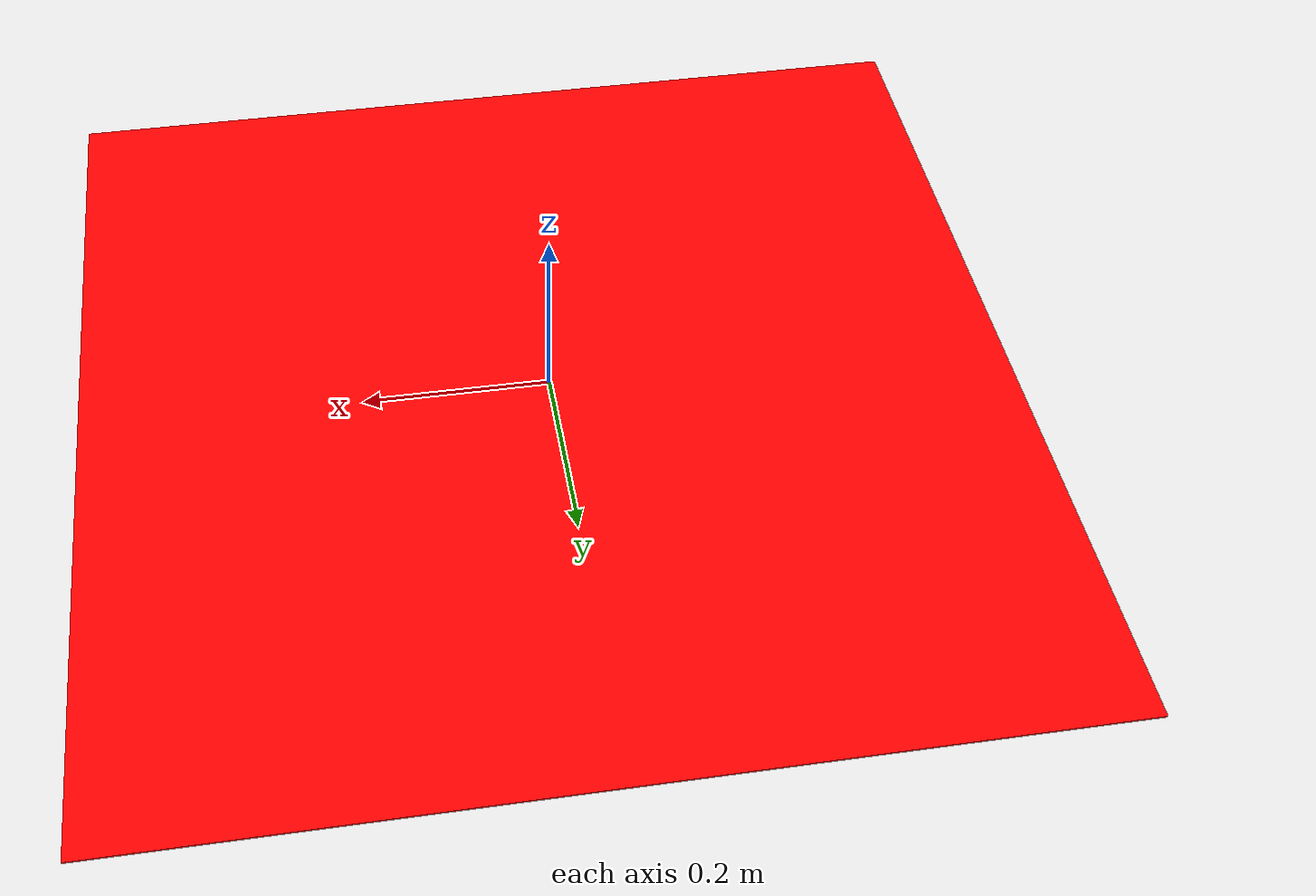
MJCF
<mujoco model="chassis_box_top_layer">
  <asset>
    <material name="mat_red" rgba="1 0 0 1"/>
  </asset>
  <worldbody>
    <body name="chassis_box_top_layer" pos="0 0 0">
      <geom name="top_layer" type="box" size="0.5 0.5 0.001"  material="mat_red" rgba="1 0 0 1"/>
    </body>
  </worldbody>
</mujoco>
